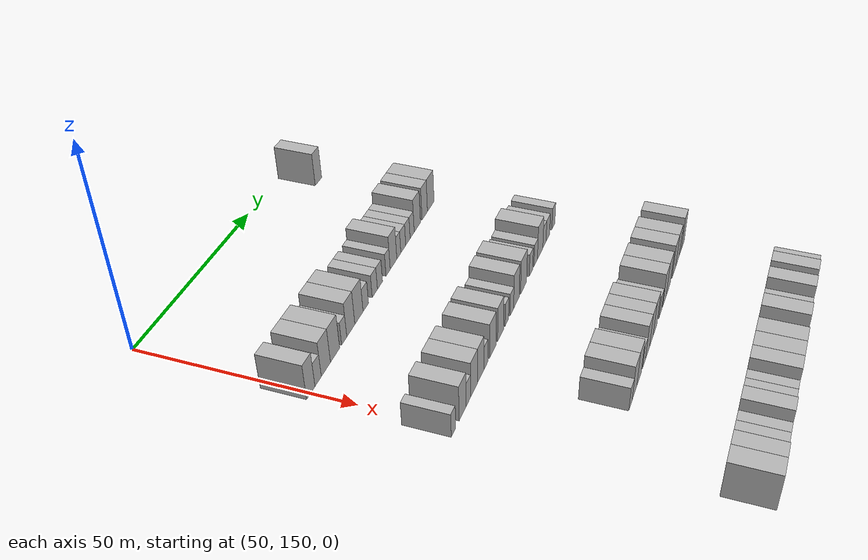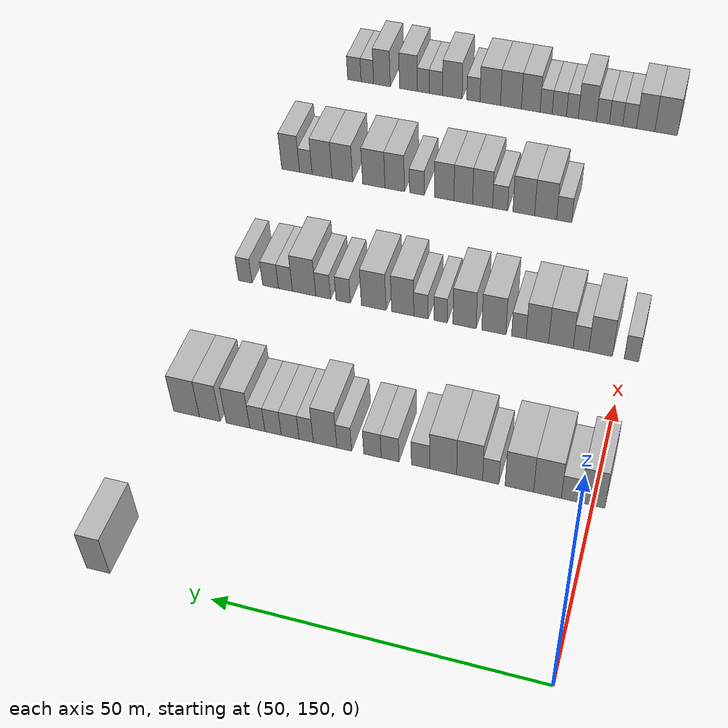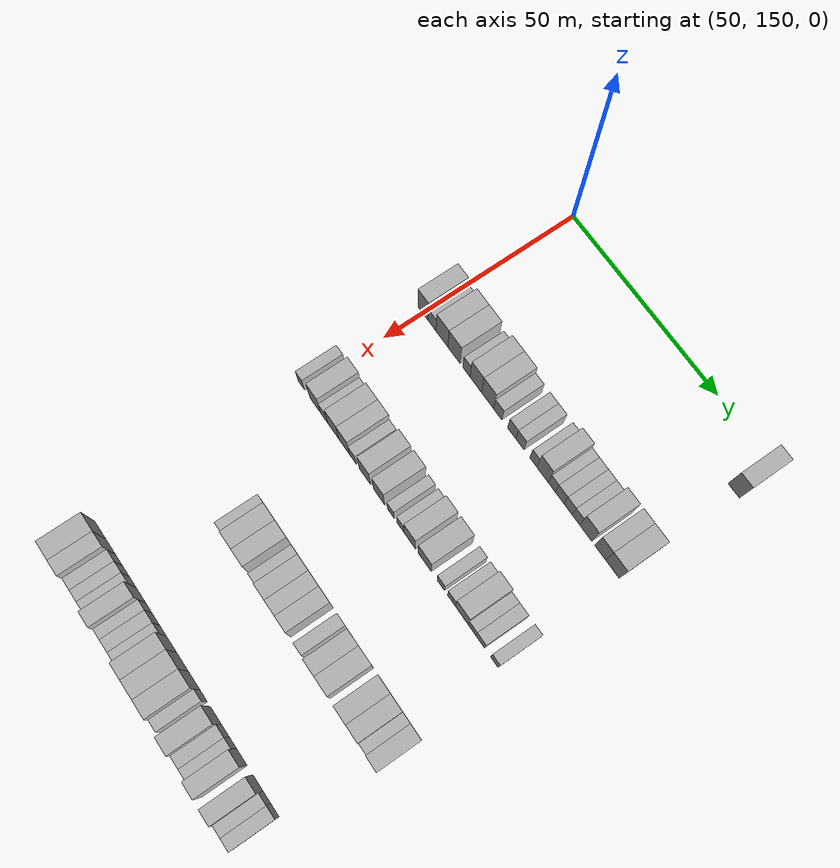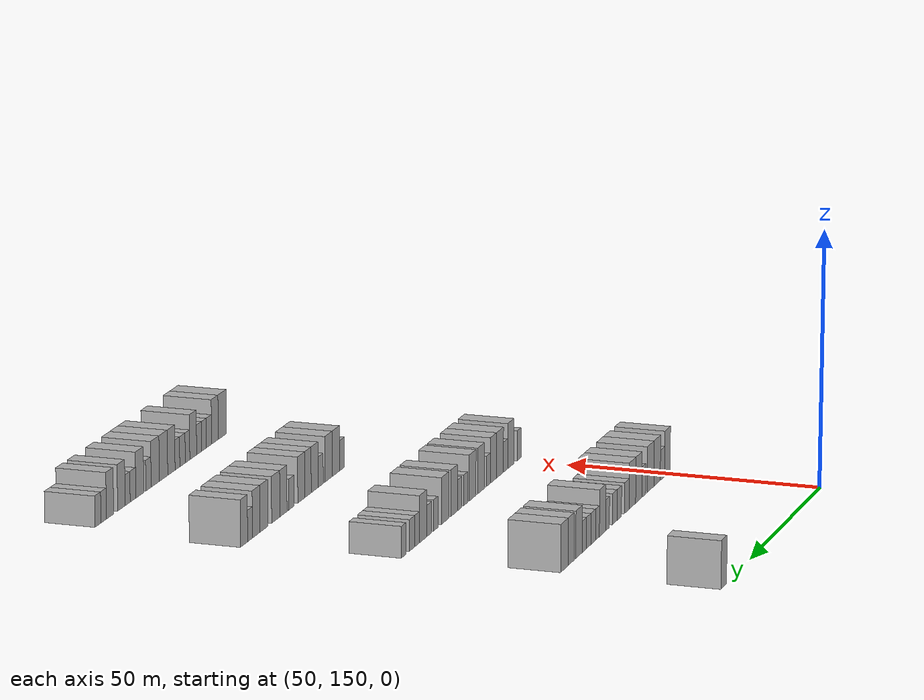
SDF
<sdf version="1.6">
 <world name="default">
  <model name="building_379">
   <static>1</static>
   <pose>55.0000 217.6467 0 0.000000 0.000000 0.000000</pose>
   <link name="link">
    <pose>0 0 4.50 0 0 0</pose>
    <collision name="collision"><geometry><box><size>10.0000 3.7073 9.0000</size></box></geometry></collision>
    <visual name="visual">
     <cast_shadows>0</cast_shadows>
     <geometry><box><size>10.0000 3.7073 9.0000</size></box></geometry>
     <material>
      <script>
       <uri>model://HANNAS_wall/materials/scripts</uri>
       <uri>model://HANNAS_wall/materials/textures</uri>
       <name>vrc/HANNAS_wall</name>
      </script>
     </material>
    </visual>
   </link>
  </model>
  <model name="building_598">
   <static>1</static>
   <pose>85.0000 150.0785 0 0.000000 0.000000 0.000000</pose>
   <link name="link">
    <pose>0 0 4.50 0 0 0</pose>
    <collision name="collision"><geometry><box><size>10.0000 3.7799 9.0000</size></box></geometry></collision>
    <visual name="visual">
     <cast_shadows>0</cast_shadows>
     <geometry><box><size>10.0000 3.7799 9.0000</size></box></geometry>
     <material>
      <script>
       <uri>model://HANNAS_wall/materials/scripts</uri>
       <uri>model://HANNAS_wall/materials/textures</uri>
       <name>vrc/HANNAS_wall</name>
      </script>
     </material>
    </visual>
   </link>
  </model>
  <model name="building_599">
   <static>1</static>
   <pose>85.0000 153.4374 0 0.000000 0.000000 0.000000</pose>
   <link name="link">
    <pose>0 0 3.00 0 0 0</pose>
    <collision name="collision"><geometry><box><size>10.0000 2.9381 6.0000</size></box></geometry></collision>
    <visual name="visual">
     <cast_shadows>0</cast_shadows>
     <geometry><box><size>10.0000 2.9381 6.0000</size></box></geometry>
     <material>
      <script>
       <uri>model://HANNAS_wall/materials/scripts</uri>
       <uri>model://HANNAS_wall/materials/textures</uri>
       <name>vrc/HANNAS_wall</name>
      </script>
     </material>
    </visual>
   </link>
  </model>
  <model name="building_600">
   <static>1</static>
   <pose>85.0000 157.0739 0 0.000000 0.000000 0.000000</pose>
   <link name="link">
    <pose>0 0 4.50 0 0 0</pose>
    <collision name="collision"><geometry><box><size>10.0000 4.3348 9.0000</size></box></geometry></collision>
    <visual name="visual">
     <cast_shadows>0</cast_shadows>
     <geometry><box><size>10.0000 4.3348 9.0000</size></box></geometry>
     <material>
      <script>
       <uri>model://HANNAS_wall/materials/scripts</uri>
       <uri>model://HANNAS_wall/materials/textures</uri>
       <name>vrc/HANNAS_wall</name>
      </script>
     </material>
    </visual>
   </link>
  </model>
  <model name="building_601">
   <static>1</static>
   <pose>85.0000 161.4794 0 0.000000 0.000000 0.000000</pose>
   <link name="link">
    <pose>0 0 4.50 0 0 0</pose>
    <collision name="collision"><geometry><box><size>10.0000 4.4761 9.0000</size></box></geometry></collision>
    <visual name="visual">
     <cast_shadows>0</cast_shadows>
     <geometry><box><size>10.0000 4.4761 9.0000</size></box></geometry>
     <material>
      <script>
       <uri>model://HANNAS_wall/materials/scripts</uri>
       <uri>model://HANNAS_wall/materials/textures</uri>
       <name>vrc/HANNAS_wall</name>
      </script>
     </material>
    </visual>
   </link>
  </model>
  <model name="building_602">
   <static>1</static>
   <pose>85.0000 166.0016 0 0.000000 0.000000 0.000000</pose>
   <link name="link">
    <pose>0 0 3.00 0 0 0</pose>
    <collision name="collision"><geometry><box><size>10.0000 2.5684 6.0000</size></box></geometry></collision>
    <visual name="visual">
     <cast_shadows>0</cast_shadows>
     <geometry><box><size>10.0000 2.5684 6.0000</size></box></geometry>
     <material>
      <script>
       <uri>model://HANNAS_wall/materials/scripts</uri>
       <uri>model://HANNAS_wall/materials/textures</uri>
       <name>vrc/HANNAS_wall</name>
      </script>
     </material>
    </visual>
   </link>
  </model>
  <model name="building_603">
   <static>1</static>
   <pose>85.0000 169.3496 0 0.000000 0.000000 0.000000</pose>
   <link name="link">
    <pose>0 0 4.50 0 0 0</pose>
    <collision name="collision"><geometry><box><size>10.0000 4.1277 9.0000</size></box></geometry></collision>
    <visual name="visual">
     <cast_shadows>0</cast_shadows>
     <geometry><box><size>10.0000 4.1277 9.0000</size></box></geometry>
     <material>
      <script>
       <uri>model://HANNAS_wall/materials/scripts</uri>
       <uri>model://HANNAS_wall/materials/textures</uri>
       <name>vrc/HANNAS_wall</name>
      </script>
     </material>
    </visual>
   </link>
  </model>
  <model name="building_604">
   <static>1</static>
   <pose>85.0000 173.5848 0 0.000000 0.000000 0.000000</pose>
   <link name="link">
    <pose>0 0 4.50 0 0 0</pose>
    <collision name="collision"><geometry><box><size>10.0000 4.3427 9.0000</size></box></geometry></collision>
    <visual name="visual">
     <cast_shadows>0</cast_shadows>
     <geometry><box><size>10.0000 4.3427 9.0000</size></box></geometry>
     <material>
      <script>
       <uri>model://HANNAS_wall/materials/scripts</uri>
       <uri>model://HANNAS_wall/materials/textures</uri>
       <name>vrc/HANNAS_wall</name>
      </script>
     </material>
    </visual>
   </link>
  </model>
  <model name="building_605">
   <static>1</static>
   <pose>85.0000 177.2299 0 0.000000 0.000000 0.000000</pose>
   <link name="link">
    <pose>0 0 3.00 0 0 0</pose>
    <collision name="collision"><geometry><box><size>10.0000 2.9476 6.0000</size></box></geometry></collision>
    <visual name="visual">
     <cast_shadows>0</cast_shadows>
     <geometry><box><size>10.0000 2.9476 6.0000</size></box></geometry>
     <material>
      <script>
       <uri>model://HANNAS_wall/materials/scripts</uri>
       <uri>model://HANNAS_wall/materials/textures</uri>
       <name>vrc/HANNAS_wall</name>
      </script>
     </material>
    </visual>
   </link>
  </model>
  <model name="building_606">
   <static>1</static>
   <pose>85.0000 182.1564 0 0.000000 0.000000 0.000000</pose>
   <link name="link">
    <pose>0 0 3.00 0 0 0</pose>
    <collision name="collision"><geometry><box><size>10.0000 2.9053 6.0000</size></box></geometry></collision>
    <visual name="visual">
     <cast_shadows>0</cast_shadows>
     <geometry><box><size>10.0000 2.9053 6.0000</size></box></geometry>
     <material>
      <script>
       <uri>model://HANNAS_wall/materials/scripts</uri>
       <uri>model://HANNAS_wall/materials/textures</uri>
       <name>vrc/HANNAS_wall</name>
      </script>
     </material>
    </visual>
   </link>
  </model>
  <model name="building_607">
   <static>1</static>
   <pose>85.0000 185.0451 0 0.000000 0.000000 0.000000</pose>
   <link name="link">
    <pose>0 0 3.00 0 0 0</pose>
    <collision name="collision"><geometry><box><size>10.0000 2.8722 6.0000</size></box></geometry></collision>
    <visual name="visual">
     <cast_shadows>0</cast_shadows>
     <geometry><box><size>10.0000 2.8722 6.0000</size></box></geometry>
     <material>
      <script>
       <uri>model://HANNAS_wall/materials/scripts</uri>
       <uri>model://HANNAS_wall/materials/textures</uri>
       <name>vrc/HANNAS_wall</name>
      </script>
     </material>
    </visual>
   </link>
  </model>
  <model name="building_608">
   <static>1</static>
   <pose>85.0000 189.6989 0 0.000000 0.000000 0.000000</pose>
   <link name="link">
    <pose>0 0 3.00 0 0 0</pose>
    <collision name="collision"><geometry><box><size>10.0000 2.4354 6.0000</size></box></geometry></collision>
    <visual name="visual">
     <cast_shadows>0</cast_shadows>
     <geometry><box><size>10.0000 2.4354 6.0000</size></box></geometry>
     <material>
      <script>
       <uri>model://HANNAS_wall/materials/scripts</uri>
       <uri>model://HANNAS_wall/materials/textures</uri>
       <name>vrc/HANNAS_wall</name>
      </script>
     </material>
    </visual>
   </link>
  </model>
  <model name="building_609">
   <static>1</static>
   <pose>85.0000 192.8748 0 0.000000 0.000000 0.000000</pose>
   <link name="link">
    <pose>0 0 4.50 0 0 0</pose>
    <collision name="collision"><geometry><box><size>10.0000 3.9165 9.0000</size></box></geometry></collision>
    <visual name="visual">
     <cast_shadows>0</cast_shadows>
     <geometry><box><size>10.0000 3.9165 9.0000</size></box></geometry>
     <material>
      <script>
       <uri>model://HANNAS_wall/materials/scripts</uri>
       <uri>model://HANNAS_wall/materials/textures</uri>
       <name>vrc/HANNAS_wall</name>
      </script>
     </material>
    </visual>
   </link>
  </model>
  <model name="building_610">
   <static>1</static>
   <pose>85.0000 196.0333 0 0.000000 0.000000 0.000000</pose>
   <link name="link">
    <pose>0 0 3.00 0 0 0</pose>
    <collision name="collision"><geometry><box><size>10.0000 2.4005 6.0000</size></box></geometry></collision>
    <visual name="visual">
     <cast_shadows>0</cast_shadows>
     <geometry><box><size>10.0000 2.4005 6.0000</size></box></geometry>
     <material>
      <script>
       <uri>model://HANNAS_wall/materials/scripts</uri>
       <uri>model://HANNAS_wall/materials/textures</uri>
       <name>vrc/HANNAS_wall</name>
      </script>
     </material>
    </visual>
   </link>
  </model>
  <model name="building_611">
   <static>1</static>
   <pose>85.0000 198.7253 0 0.000000 0.000000 0.000000</pose>
   <link name="link">
    <pose>0 0 3.00 0 0 0</pose>
    <collision name="collision"><geometry><box><size>10.0000 2.9834 6.0000</size></box></geometry></collision>
    <visual name="visual">
     <cast_shadows>0</cast_shadows>
     <geometry><box><size>10.0000 2.9834 6.0000</size></box></geometry>
     <material>
      <script>
       <uri>model://HANNAS_wall/materials/scripts</uri>
       <uri>model://HANNAS_wall/materials/textures</uri>
       <name>vrc/HANNAS_wall</name>
      </script>
     </material>
    </visual>
   </link>
  </model>
  <model name="building_612">
   <static>1</static>
   <pose>85.0000 201.5936 0 0.000000 0.000000 0.000000</pose>
   <link name="link">
    <pose>0 0 3.00 0 0 0</pose>
    <collision name="collision"><geometry><box><size>10.0000 2.7533 6.0000</size></box></geometry></collision>
    <visual name="visual">
     <cast_shadows>0</cast_shadows>
     <geometry><box><size>10.0000 2.7533 6.0000</size></box></geometry>
     <material>
      <script>
       <uri>model://HANNAS_wall/materials/scripts</uri>
       <uri>model://HANNAS_wall/materials/textures</uri>
       <name>vrc/HANNAS_wall</name>
      </script>
     </material>
    </visual>
   </link>
  </model>
  <model name="building_613">
   <static>1</static>
   <pose>85.0000 204.2564 0 0.000000 0.000000 0.000000</pose>
   <link name="link">
    <pose>0 0 3.00 0 0 0</pose>
    <collision name="collision"><geometry><box><size>10.0000 2.5725 6.0000</size></box></geometry></collision>
    <visual name="visual">
     <cast_shadows>0</cast_shadows>
     <geometry><box><size>10.0000 2.5725 6.0000</size></box></geometry>
     <material>
      <script>
       <uri>model://HANNAS_wall/materials/scripts</uri>
       <uri>model://HANNAS_wall/materials/textures</uri>
       <name>vrc/HANNAS_wall</name>
      </script>
     </material>
    </visual>
   </link>
  </model>
  <model name="building_614">
   <static>1</static>
   <pose>85.0000 207.5692 0 0.000000 0.000000 0.000000</pose>
   <link name="link">
    <pose>0 0 4.50 0 0 0</pose>
    <collision name="collision"><geometry><box><size>10.0000 4.0530 9.0000</size></box></geometry></collision>
    <visual name="visual">
     <cast_shadows>0</cast_shadows>
     <geometry><box><size>10.0000 4.0530 9.0000</size></box></geometry>
     <material>
      <script>
       <uri>model://HANNAS_wall/materials/scripts</uri>
       <uri>model://HANNAS_wall/materials/textures</uri>
       <name>vrc/HANNAS_wall</name>
      </script>
     </material>
    </visual>
   </link>
  </model>
  <model name="building_615">
   <static>1</static>
   <pose>85.0000 212.3995 0 0.000000 0.000000 0.000000</pose>
   <link name="link">
    <pose>0 0 4.50 0 0 0</pose>
    <collision name="collision"><geometry><box><size>10.0000 3.6077 9.0000</size></box></geometry></collision>
    <visual name="visual">
     <cast_shadows>0</cast_shadows>
     <geometry><box><size>10.0000 3.6077 9.0000</size></box></geometry>
     <material>
      <script>
       <uri>model://HANNAS_wall/materials/scripts</uri>
       <uri>model://HANNAS_wall/materials/textures</uri>
       <name>vrc/HANNAS_wall</name>
      </script>
     </material>
    </visual>
   </link>
  </model>
  <model name="building_616">
   <static>1</static>
   <pose>85.0000 216.4337 0 0.000000 0.000000 0.000000</pose>
   <link name="link">
    <pose>0 0 4.50 0 0 0</pose>
    <collision name="collision"><geometry><box><size>10.0000 4.4605 9.0000</size></box></geometry></collision>
    <visual name="visual">
     <cast_shadows>0</cast_shadows>
     <geometry><box><size>10.0000 4.4605 9.0000</size></box></geometry>
     <material>
      <script>
       <uri>model://HANNAS_wall/materials/scripts</uri>
       <uri>model://HANNAS_wall/materials/textures</uri>
       <name>vrc/HANNAS_wall</name>
      </script>
     </material>
    </visual>
   </link>
  </model>
  <model name="building_828">
   <static>1</static>
   <pose>115.0000 148.9648 0 0.000000 0.000000 0.000000</pose>
   <link name="link">
    <pose>0 0 3.00 0 0 0</pose>
    <collision name="collision"><geometry><box><size>10.0000 2.4385 6.0000</size></box></geometry></collision>
    <visual name="visual">
     <cast_shadows>0</cast_shadows>
     <geometry><box><size>10.0000 2.4385 6.0000</size></box></geometry>
     <material>
      <script>
       <uri>model://HANNAS_wall/materials/scripts</uri>
       <uri>model://HANNAS_wall/materials/textures</uri>
       <name>vrc/HANNAS_wall</name>
      </script>
     </material>
    </visual>
   </link>
  </model>
  <model name="building_829">
   <static>1</static>
   <pose>115.0000 154.1954 0 0.000000 0.000000 0.000000</pose>
   <link name="link">
    <pose>0 0 4.50 0 0 0</pose>
    <collision name="collision"><geometry><box><size>10.0000 4.0228 9.0000</size></box></geometry></collision>
    <visual name="visual">
     <cast_shadows>0</cast_shadows>
     <geometry><box><size>10.0000 4.0228 9.0000</size></box></geometry>
     <material>
      <script>
       <uri>model://HANNAS_wall/materials/scripts</uri>
       <uri>model://HANNAS_wall/materials/textures</uri>
       <name>vrc/HANNAS_wall</name>
      </script>
     </material>
    </visual>
   </link>
  </model>
  <model name="building_830">
   <static>1</static>
   <pose>115.0000 157.5429 0 0.000000 0.000000 0.000000</pose>
   <link name="link">
    <pose>0 0 3.00 0 0 0</pose>
    <collision name="collision"><geometry><box><size>10.0000 2.6722 6.0000</size></box></geometry></collision>
    <visual name="visual">
     <cast_shadows>0</cast_shadows>
     <geometry><box><size>10.0000 2.6722 6.0000</size></box></geometry>
     <material>
      <script>
       <uri>model://HANNAS_wall/materials/scripts</uri>
       <uri>model://HANNAS_wall/materials/textures</uri>
       <name>vrc/HANNAS_wall</name>
      </script>
     </material>
    </visual>
   </link>
  </model>
  <model name="building_831">
   <static>1</static>
   <pose>115.0000 160.9917 0 0.000000 0.000000 0.000000</pose>
   <link name="link">
    <pose>0 0 4.50 0 0 0</pose>
    <collision name="collision"><geometry><box><size>10.0000 4.2254 9.0000</size></box></geometry></collision>
    <visual name="visual">
     <cast_shadows>0</cast_shadows>
     <geometry><box><size>10.0000 4.2254 9.0000</size></box></geometry>
     <material>
      <script>
       <uri>model://HANNAS_wall/materials/scripts</uri>
       <uri>model://HANNAS_wall/materials/textures</uri>
       <name>vrc/HANNAS_wall</name>
      </script>
     </material>
    </visual>
   </link>
  </model>
  <model name="building_832">
   <static>1</static>
   <pose>115.0000 165.0558 0 0.000000 0.000000 0.000000</pose>
   <link name="link">
    <pose>0 0 4.50 0 0 0</pose>
    <collision name="collision"><geometry><box><size>10.0000 3.9028 9.0000</size></box></geometry></collision>
    <visual name="visual">
     <cast_shadows>0</cast_shadows>
     <geometry><box><size>10.0000 3.9028 9.0000</size></box></geometry>
     <material>
      <script>
       <uri>model://HANNAS_wall/materials/scripts</uri>
       <uri>model://HANNAS_wall/materials/textures</uri>
       <name>vrc/HANNAS_wall</name>
      </script>
     </material>
    </visual>
   </link>
  </model>
  <model name="building_833">
   <static>1</static>
   <pose>115.0000 168.2707 0 0.000000 0.000000 0.000000</pose>
   <link name="link">
    <pose>0 0 3.00 0 0 0</pose>
    <collision name="collision"><geometry><box><size>10.0000 2.5271 6.0000</size></box></geometry></collision>
    <visual name="visual">
     <cast_shadows>0</cast_shadows>
     <geometry><box><size>10.0000 2.5271 6.0000</size></box></geometry>
     <material>
      <script>
       <uri>model://HANNAS_wall/materials/scripts</uri>
       <uri>model://HANNAS_wall/materials/textures</uri>
       <name>vrc/HANNAS_wall</name>
      </script>
     </material>
    </visual>
   </link>
  </model>
  <model name="building_834">
   <static>1</static>
   <pose>115.0000 172.6425 0 0.000000 0.000000 0.000000</pose>
   <link name="link">
    <pose>0 0 4.50 0 0 0</pose>
    <collision name="collision"><geometry><box><size>10.0000 4.2163 9.0000</size></box></geometry></collision>
    <visual name="visual">
     <cast_shadows>0</cast_shadows>
     <geometry><box><size>10.0000 4.2163 9.0000</size></box></geometry>
     <material>
      <script>
       <uri>model://HANNAS_wall/materials/scripts</uri>
       <uri>model://HANNAS_wall/materials/textures</uri>
       <name>vrc/HANNAS_wall</name>
      </script>
     </material>
    </visual>
   </link>
  </model>
  <model name="building_835">
   <static>1</static>
   <pose>115.0000 177.8009 0 0.000000 0.000000 0.000000</pose>
   <link name="link">
    <pose>0 0 4.50 0 0 0</pose>
    <collision name="collision"><geometry><box><size>10.0000 4.1006 9.0000</size></box></geometry></collision>
    <visual name="visual">
     <cast_shadows>0</cast_shadows>
     <geometry><box><size>10.0000 4.1006 9.0000</size></box></geometry>
     <material>
      <script>
       <uri>model://HANNAS_wall/materials/scripts</uri>
       <uri>model://HANNAS_wall/materials/textures</uri>
       <name>vrc/HANNAS_wall</name>
      </script>
     </material>
    </visual>
   </link>
  </model>
  <model name="building_836">
   <static>1</static>
   <pose>115.0000 182.0591 0 0.000000 0.000000 0.000000</pose>
   <link name="link">
    <pose>0 0 3.00 0 0 0</pose>
    <collision name="collision"><geometry><box><size>10.0000 2.4159 6.0000</size></box></geometry></collision>
    <visual name="visual">
     <cast_shadows>0</cast_shadows>
     <geometry><box><size>10.0000 2.4159 6.0000</size></box></geometry>
     <material>
      <script>
       <uri>model://HANNAS_wall/materials/scripts</uri>
       <uri>model://HANNAS_wall/materials/textures</uri>
       <name>vrc/HANNAS_wall</name>
      </script>
     </material>
    </visual>
   </link>
  </model>
  <model name="building_837">
   <static>1</static>
   <pose>115.0000 185.5472 0 0.000000 0.000000 0.000000</pose>
   <link name="link">
    <pose>0 0 3.00 0 0 0</pose>
    <collision name="collision"><geometry><box><size>10.0000 2.5602 6.0000</size></box></geometry></collision>
    <visual name="visual">
     <cast_shadows>0</cast_shadows>
     <geometry><box><size>10.0000 2.5602 6.0000</size></box></geometry>
     <material>
      <script>
       <uri>model://HANNAS_wall/materials/scripts</uri>
       <uri>model://HANNAS_wall/materials/textures</uri>
       <name>vrc/HANNAS_wall</name>
      </script>
     </material>
    </visual>
   </link>
  </model>
  <model name="building_838">
   <static>1</static>
   <pose>115.0000 188.8322 0 0.000000 0.000000 0.000000</pose>
   <link name="link">
    <pose>0 0 4.50 0 0 0</pose>
    <collision name="collision"><geometry><box><size>10.0000 4.0099 9.0000</size></box></geometry></collision>
    <visual name="visual">
     <cast_shadows>0</cast_shadows>
     <geometry><box><size>10.0000 4.0099 9.0000</size></box></geometry>
     <material>
      <script>
       <uri>model://HANNAS_wall/materials/scripts</uri>
       <uri>model://HANNAS_wall/materials/textures</uri>
       <name>vrc/HANNAS_wall</name>
      </script>
     </material>
    </visual>
   </link>
  </model>
  <model name="building_839">
   <static>1</static>
   <pose>115.0000 194.0826 0 0.000000 0.000000 0.000000</pose>
   <link name="link">
    <pose>0 0 4.50 0 0 0</pose>
    <collision name="collision"><geometry><box><size>10.0000 4.4908 9.0000</size></box></geometry></collision>
    <visual name="visual">
     <cast_shadows>0</cast_shadows>
     <geometry><box><size>10.0000 4.4908 9.0000</size></box></geometry>
     <material>
      <script>
       <uri>model://HANNAS_wall/materials/scripts</uri>
       <uri>model://HANNAS_wall/materials/textures</uri>
       <name>vrc/HANNAS_wall</name>
      </script>
     </material>
    </visual>
   </link>
  </model>
  <model name="building_840">
   <static>1</static>
   <pose>115.0000 199.6449 0 0.000000 0.000000 0.000000</pose>
   <link name="link">
    <pose>0 0 3.00 0 0 0</pose>
    <collision name="collision"><geometry><box><size>10.0000 2.6338 6.0000</size></box></geometry></collision>
    <visual name="visual">
     <cast_shadows>0</cast_shadows>
     <geometry><box><size>10.0000 2.6338 6.0000</size></box></geometry>
     <material>
      <script>
       <uri>model://HANNAS_wall/materials/scripts</uri>
       <uri>model://HANNAS_wall/materials/textures</uri>
       <name>vrc/HANNAS_wall</name>
      </script>
     </material>
    </visual>
   </link>
  </model>
  <model name="building_841">
   <static>1</static>
   <pose>115.0000 203.3313 0 0.000000 0.000000 0.000000</pose>
   <link name="link">
    <pose>0 0 3.00 0 0 0</pose>
    <collision name="collision"><geometry><box><size>10.0000 2.7391 6.0000</size></box></geometry></collision>
    <visual name="visual">
     <cast_shadows>0</cast_shadows>
     <geometry><box><size>10.0000 2.7391 6.0000</size></box></geometry>
     <material>
      <script>
       <uri>model://HANNAS_wall/materials/scripts</uri>
       <uri>model://HANNAS_wall/materials/textures</uri>
       <name>vrc/HANNAS_wall</name>
      </script>
     </material>
    </visual>
   </link>
  </model>
  <model name="building_842">
   <static>1</static>
   <pose>115.0000 206.8647 0 0.000000 0.000000 0.000000</pose>
   <link name="link">
    <pose>0 0 4.50 0 0 0</pose>
    <collision name="collision"><geometry><box><size>10.0000 4.3277 9.0000</size></box></geometry></collision>
    <visual name="visual">
     <cast_shadows>0</cast_shadows>
     <geometry><box><size>10.0000 4.3277 9.0000</size></box></geometry>
     <material>
      <script>
       <uri>model://HANNAS_wall/materials/scripts</uri>
       <uri>model://HANNAS_wall/materials/textures</uri>
       <name>vrc/HANNAS_wall</name>
      </script>
     </material>
    </visual>
   </link>
  </model>
  <model name="building_843">
   <static>1</static>
   <pose>115.0000 210.3379 0 0.000000 0.000000 0.000000</pose>
   <link name="link">
    <pose>0 0 3.00 0 0 0</pose>
    <collision name="collision"><geometry><box><size>10.0000 2.6187 6.0000</size></box></geometry></collision>
    <visual name="visual">
     <cast_shadows>0</cast_shadows>
     <geometry><box><size>10.0000 2.6187 6.0000</size></box></geometry>
     <material>
      <script>
       <uri>model://HANNAS_wall/materials/scripts</uri>
       <uri>model://HANNAS_wall/materials/textures</uri>
       <name>vrc/HANNAS_wall</name>
      </script>
     </material>
    </visual>
   </link>
  </model>
  <model name="building_844">
   <static>1</static>
   <pose>115.0000 213.1191 0 0.000000 0.000000 0.000000</pose>
   <link name="link">
    <pose>0 0 3.00 0 0 0</pose>
    <collision name="collision"><geometry><box><size>10.0000 2.9436 6.0000</size></box></geometry></collision>
    <visual name="visual">
     <cast_shadows>0</cast_shadows>
     <geometry><box><size>10.0000 2.9436 6.0000</size></box></geometry>
     <material>
      <script>
       <uri>model://HANNAS_wall/materials/scripts</uri>
       <uri>model://HANNAS_wall/materials/textures</uri>
       <name>vrc/HANNAS_wall</name>
      </script>
     </material>
    </visual>
   </link>
  </model>
  <model name="building_845">
   <static>1</static>
   <pose>115.0000 217.8775 0 0.000000 0.000000 0.000000</pose>
   <link name="link">
    <pose>0 0 3.00 0 0 0</pose>
    <collision name="collision"><geometry><box><size>10.0000 2.5733 6.0000</size></box></geometry></collision>
    <visual name="visual">
     <cast_shadows>0</cast_shadows>
     <geometry><box><size>10.0000 2.5733 6.0000</size></box></geometry>
     <material>
      <script>
       <uri>model://HANNAS_wall/materials/scripts</uri>
       <uri>model://HANNAS_wall/materials/textures</uri>
       <name>vrc/HANNAS_wall</name>
      </script>
     </material>
    </visual>
   </link>
  </model>
  <model name="building_1065">
   <static>1</static>
   <pose>145.0000 166.3874 0 0.000000 0.000000 0.000000</pose>
   <link name="link">
    <pose>0 0 3.00 0 0 0</pose>
    <collision name="collision"><geometry><box><size>10.0000 2.8428 6.0000</size></box></geometry></collision>
    <visual name="visual">
     <cast_shadows>0</cast_shadows>
     <geometry><box><size>10.0000 2.8428 6.0000</size></box></geometry>
     <material>
      <script>
       <uri>model://HANNAS_wall/materials/scripts</uri>
       <uri>model://HANNAS_wall/materials/textures</uri>
       <name>vrc/HANNAS_wall</name>
      </script>
     </material>
    </visual>
   </link>
  </model>
  <model name="building_1066">
   <static>1</static>
   <pose>145.0000 169.8987 0 0.000000 0.000000 0.000000</pose>
   <link name="link">
    <pose>0 0 4.50 0 0 0</pose>
    <collision name="collision"><geometry><box><size>10.0000 4.1797 9.0000</size></box></geometry></collision>
    <visual name="visual">
     <cast_shadows>0</cast_shadows>
     <geometry><box><size>10.0000 4.1797 9.0000</size></box></geometry>
     <material>
      <script>
       <uri>model://HANNAS_wall/materials/scripts</uri>
       <uri>model://HANNAS_wall/materials/textures</uri>
       <name>vrc/HANNAS_wall</name>
      </script>
     </material>
    </visual>
   </link>
  </model>
  <model name="building_1067">
   <static>1</static>
   <pose>145.0000 174.0564 0 0.000000 0.000000 0.000000</pose>
   <link name="link">
    <pose>0 0 4.50 0 0 0</pose>
    <collision name="collision"><geometry><box><size>10.0000 4.1358 9.0000</size></box></geometry></collision>
    <visual name="visual">
     <cast_shadows>0</cast_shadows>
     <geometry><box><size>10.0000 4.1358 9.0000</size></box></geometry>
     <material>
      <script>
       <uri>model://HANNAS_wall/materials/scripts</uri>
       <uri>model://HANNAS_wall/materials/textures</uri>
       <name>vrc/HANNAS_wall</name>
      </script>
     </material>
    </visual>
   </link>
  </model>
  <model name="building_1068">
   <static>1</static>
   <pose>145.0000 178.5800 0 0.000000 0.000000 0.000000</pose>
   <link name="link">
    <pose>0 0 3.00 0 0 0</pose>
    <collision name="collision"><geometry><box><size>10.0000 2.9113 6.0000</size></box></geometry></collision>
    <visual name="visual">
     <cast_shadows>0</cast_shadows>
     <geometry><box><size>10.0000 2.9113 6.0000</size></box></geometry>
     <material>
      <script>
       <uri>model://HANNAS_wall/materials/scripts</uri>
       <uri>model://HANNAS_wall/materials/textures</uri>
       <name>vrc/HANNAS_wall</name>
      </script>
     </material>
    </visual>
   </link>
  </model>
  <model name="building_1069">
   <static>1</static>
   <pose>145.0000 181.9578 0 0.000000 0.000000 0.000000</pose>
   <link name="link">
    <pose>0 0 4.50 0 0 0</pose>
    <collision name="collision"><geometry><box><size>10.0000 3.8443 9.0000</size></box></geometry></collision>
    <visual name="visual">
     <cast_shadows>0</cast_shadows>
     <geometry><box><size>10.0000 3.8443 9.0000</size></box></geometry>
     <material>
      <script>
       <uri>model://HANNAS_wall/materials/scripts</uri>
       <uri>model://HANNAS_wall/materials/textures</uri>
       <name>vrc/HANNAS_wall</name>
      </script>
     </material>
    </visual>
   </link>
  </model>
  <model name="building_1070">
   <static>1</static>
   <pose>145.0000 185.6859 0 0.000000 0.000000 0.000000</pose>
   <link name="link">
    <pose>0 0 4.50 0 0 0</pose>
    <collision name="collision"><geometry><box><size>10.0000 3.6119 9.0000</size></box></geometry></collision>
    <visual name="visual">
     <cast_shadows>0</cast_shadows>
     <geometry><box><size>10.0000 3.6119 9.0000</size></box></geometry>
     <material>
      <script>
       <uri>model://HANNAS_wall/materials/scripts</uri>
       <uri>model://HANNAS_wall/materials/textures</uri>
       <name>vrc/HANNAS_wall</name>
      </script>
     </material>
    </visual>
   </link>
  </model>
  <model name="building_1071">
   <static>1</static>
   <pose>145.0000 189.4040 0 0.000000 0.000000 0.000000</pose>
   <link name="link">
    <pose>0 0 4.50 0 0 0</pose>
    <collision name="collision"><geometry><box><size>10.0000 3.8243 9.0000</size></box></geometry></collision>
    <visual name="visual">
     <cast_shadows>0</cast_shadows>
     <geometry><box><size>10.0000 3.8243 9.0000</size></box></geometry>
     <material>
      <script>
       <uri>model://HANNAS_wall/materials/scripts</uri>
       <uri>model://HANNAS_wall/materials/textures</uri>
       <name>vrc/HANNAS_wall</name>
      </script>
     </material>
    </visual>
   </link>
  </model>
  <model name="building_1072">
   <static>1</static>
   <pose>145.0000 194.7619 0 0.000000 0.000000 0.000000</pose>
   <link name="link">
    <pose>0 0 3.00 0 0 0</pose>
    <collision name="collision"><geometry><box><size>10.0000 2.8916 6.0000</size></box></geometry></collision>
    <visual name="visual">
     <cast_shadows>0</cast_shadows>
     <geometry><box><size>10.0000 2.8916 6.0000</size></box></geometry>
     <material>
      <script>
       <uri>model://HANNAS_wall/materials/scripts</uri>
       <uri>model://HANNAS_wall/materials/textures</uri>
       <name>vrc/HANNAS_wall</name>
      </script>
     </material>
    </visual>
   </link>
  </model>
  <model name="building_1073">
   <static>1</static>
   <pose>145.0000 199.1402 0 0.000000 0.000000 0.000000</pose>
   <link name="link">
    <pose>0 0 4.50 0 0 0</pose>
    <collision name="collision"><geometry><box><size>10.0000 3.8649 9.0000</size></box></geometry></collision>
    <visual name="visual">
     <cast_shadows>0</cast_shadows>
     <geometry><box><size>10.0000 3.8649 9.0000</size></box></geometry>
     <material>
      <script>
       <uri>model://HANNAS_wall/materials/scripts</uri>
       <uri>model://HANNAS_wall/materials/textures</uri>
       <name>vrc/HANNAS_wall</name>
      </script>
     </material>
    </visual>
   </link>
  </model>
  <model name="building_1074">
   <static>1</static>
   <pose>145.0000 203.2969 0 0.000000 0.000000 0.000000</pose>
   <link name="link">
    <pose>0 0 4.50 0 0 0</pose>
    <collision name="collision"><geometry><box><size>10.0000 4.4487 9.0000</size></box></geometry></collision>
    <visual name="visual">
     <cast_shadows>0</cast_shadows>
     <geometry><box><size>10.0000 4.4487 9.0000</size></box></geometry>
     <material>
      <script>
       <uri>model://HANNAS_wall/materials/scripts</uri>
       <uri>model://HANNAS_wall/materials/textures</uri>
       <name>vrc/HANNAS_wall</name>
      </script>
     </material>
    </visual>
   </link>
  </model>
  <model name="building_1075">
   <static>1</static>
   <pose>145.0000 209.6086 0 0.000000 0.000000 0.000000</pose>
   <link name="link">
    <pose>0 0 4.50 0 0 0</pose>
    <collision name="collision"><geometry><box><size>10.0000 4.1746 9.0000</size></box></geometry></collision>
    <visual name="visual">
     <cast_shadows>0</cast_shadows>
     <geometry><box><size>10.0000 4.1746 9.0000</size></box></geometry>
     <material>
      <script>
       <uri>model://HANNAS_wall/materials/scripts</uri>
       <uri>model://HANNAS_wall/materials/textures</uri>
       <name>vrc/HANNAS_wall</name>
      </script>
     </material>
    </visual>
   </link>
  </model>
  <model name="building_1076">
   <static>1</static>
   <pose>145.0000 213.7085 0 0.000000 0.000000 0.000000</pose>
   <link name="link">
    <pose>0 0 4.50 0 0 0</pose>
    <collision name="collision"><geometry><box><size>10.0000 4.0252 9.0000</size></box></geometry></collision>
    <visual name="visual">
     <cast_shadows>0</cast_shadows>
     <geometry><box><size>10.0000 4.0252 9.0000</size></box></geometry>
     <material>
      <script>
       <uri>model://HANNAS_wall/materials/scripts</uri>
       <uri>model://HANNAS_wall/materials/textures</uri>
       <name>vrc/HANNAS_wall</name>
      </script>
     </material>
    </visual>
   </link>
  </model>
  <model name="building_1077">
   <static>1</static>
   <pose>145.0000 216.9926 0 0.000000 0.000000 0.000000</pose>
   <link name="link">
    <pose>0 0 3.00 0 0 0</pose>
    <collision name="collision"><geometry><box><size>10.0000 2.5429 6.0000</size></box></geometry></collision>
    <visual name="visual">
     <cast_shadows>0</cast_shadows>
     <geometry><box><size>10.0000 2.5429 6.0000</size></box></geometry>
     <material>
      <script>
       <uri>model://HANNAS_wall/materials/scripts</uri>
       <uri>model://HANNAS_wall/materials/textures</uri>
       <name>vrc/HANNAS_wall</name>
      </script>
     </material>
    </visual>
   </link>
  </model>
  <model name="building_1078">
   <static>1</static>
   <pose>145.0000 220.0880 0 0.000000 0.000000 0.000000</pose>
   <link name="link">
    <pose>0 0 4.50 0 0 0</pose>
    <collision name="collision"><geometry><box><size>10.0000 3.6480 9.0000</size></box></geometry></collision>
    <visual name="visual">
     <cast_shadows>0</cast_shadows>
     <geometry><box><size>10.0000 3.6480 9.0000</size></box></geometry>
     <material>
      <script>
       <uri>model://HANNAS_wall/materials/scripts</uri>
       <uri>model://HANNAS_wall/materials/textures</uri>
       <name>vrc/HANNAS_wall</name>
      </script>
     </material>
    </visual>
   </link>
  </model>
  <model name="building_1289">
   <static>1</static>
   <pose>175.0000 151.6793 0 0.000000 0.000000 0.000000</pose>
   <link name="link">
    <pose>0 0 4.50 0 0 0</pose>
    <collision name="collision"><geometry><box><size>10.0000 4.4831 9.0000</size></box></geometry></collision>
    <visual name="visual">
     <cast_shadows>0</cast_shadows>
     <geometry><box><size>10.0000 4.4831 9.0000</size></box></geometry>
     <material>
      <script>
       <uri>model://HANNAS_wall/materials/scripts</uri>
       <uri>model://HANNAS_wall/materials/textures</uri>
       <name>vrc/HANNAS_wall</name>
      </script>
     </material>
    </visual>
   </link>
  </model>
  <model name="building_1290">
   <static>1</static>
   <pose>175.0000 155.7691 0 0.000000 0.000000 0.000000</pose>
   <link name="link">
    <pose>0 0 4.50 0 0 0</pose>
    <collision name="collision"><geometry><box><size>10.0000 3.6965 9.0000</size></box></geometry></collision>
    <visual name="visual">
     <cast_shadows>0</cast_shadows>
     <geometry><box><size>10.0000 3.6965 9.0000</size></box></geometry>
     <material>
      <script>
       <uri>model://HANNAS_wall/materials/scripts</uri>
       <uri>model://HANNAS_wall/materials/textures</uri>
       <name>vrc/HANNAS_wall</name>
      </script>
     </material>
    </visual>
   </link>
  </model>
  <model name="building_1291">
   <static>1</static>
   <pose>175.0000 159.0152 0 0.000000 0.000000 0.000000</pose>
   <link name="link">
    <pose>0 0 3.00 0 0 0</pose>
    <collision name="collision"><geometry><box><size>10.0000 2.7956 6.0000</size></box></geometry></collision>
    <visual name="visual">
     <cast_shadows>0</cast_shadows>
     <geometry><box><size>10.0000 2.7956 6.0000</size></box></geometry>
     <material>
      <script>
       <uri>model://HANNAS_wall/materials/scripts</uri>
       <uri>model://HANNAS_wall/materials/textures</uri>
       <name>vrc/HANNAS_wall</name>
      </script>
     </material>
    </visual>
   </link>
  </model>
  <model name="building_1292">
   <static>1</static>
   <pose>175.0000 161.7531 0 0.000000 0.000000 0.000000</pose>
   <link name="link">
    <pose>0 0 3.00 0 0 0</pose>
    <collision name="collision"><geometry><box><size>10.0000 2.6802 6.0000</size></box></geometry></collision>
    <visual name="visual">
     <cast_shadows>0</cast_shadows>
     <geometry><box><size>10.0000 2.6802 6.0000</size></box></geometry>
     <material>
      <script>
       <uri>model://HANNAS_wall/materials/scripts</uri>
       <uri>model://HANNAS_wall/materials/textures</uri>
       <name>vrc/HANNAS_wall</name>
      </script>
     </material>
    </visual>
   </link>
  </model>
  <model name="building_1293">
   <static>1</static>
   <pose>175.0000 164.4236 0 0.000000 0.000000 0.000000</pose>
   <link name="link">
    <pose>0 0 3.00 0 0 0</pose>
    <collision name="collision"><geometry><box><size>10.0000 2.6607 6.0000</size></box></geometry></collision>
    <visual name="visual">
     <cast_shadows>0</cast_shadows>
     <geometry><box><size>10.0000 2.6607 6.0000</size></box></geometry>
     <material>
      <script>
       <uri>model://HANNAS_wall/materials/scripts</uri>
       <uri>model://HANNAS_wall/materials/textures</uri>
       <name>vrc/HANNAS_wall</name>
      </script>
     </material>
    </visual>
   </link>
  </model>
  <model name="building_1294">
   <static>1</static>
   <pose>175.0000 167.5961 0 0.000000 0.000000 0.000000</pose>
   <link name="link">
    <pose>0 0 4.50 0 0 0</pose>
    <collision name="collision"><geometry><box><size>10.0000 3.6844 9.0000</size></box></geometry></collision>
    <visual name="visual">
     <cast_shadows>0</cast_shadows>
     <geometry><box><size>10.0000 3.6844 9.0000</size></box></geometry>
     <material>
      <script>
       <uri>model://HANNAS_wall/materials/scripts</uri>
       <uri>model://HANNAS_wall/materials/textures</uri>
       <name>vrc/HANNAS_wall</name>
      </script>
     </material>
    </visual>
   </link>
  </model>
  <model name="building_1295">
   <static>1</static>
   <pose>175.0000 170.6561 0 0.000000 0.000000 0.000000</pose>
   <link name="link">
    <pose>0 0 3.00 0 0 0</pose>
    <collision name="collision"><geometry><box><size>10.0000 2.4354 6.0000</size></box></geometry></collision>
    <visual name="visual">
     <cast_shadows>0</cast_shadows>
     <geometry><box><size>10.0000 2.4354 6.0000</size></box></geometry>
     <material>
      <script>
       <uri>model://HANNAS_wall/materials/scripts</uri>
       <uri>model://HANNAS_wall/materials/textures</uri>
       <name>vrc/HANNAS_wall</name>
      </script>
     </material>
    </visual>
   </link>
  </model>
  <model name="building_1296">
   <static>1</static>
   <pose>175.0000 173.3408 0 0.000000 0.000000 0.000000</pose>
   <link name="link">
    <pose>0 0 3.00 0 0 0</pose>
    <collision name="collision"><geometry><box><size>10.0000 2.9340 6.0000</size></box></geometry></collision>
    <visual name="visual">
     <cast_shadows>0</cast_shadows>
     <geometry><box><size>10.0000 2.9340 6.0000</size></box></geometry>
     <material>
      <script>
       <uri>model://HANNAS_wall/materials/scripts</uri>
       <uri>model://HANNAS_wall/materials/textures</uri>
       <name>vrc/HANNAS_wall</name>
      </script>
     </material>
    </visual>
   </link>
  </model>
  <model name="building_1297">
   <static>1</static>
   <pose>175.0000 176.0591 0 0.000000 0.000000 0.000000</pose>
   <link name="link">
    <pose>0 0 3.00 0 0 0</pose>
    <collision name="collision"><geometry><box><size>10.0000 2.5025 6.0000</size></box></geometry></collision>
    <visual name="visual">
     <cast_shadows>0</cast_shadows>
     <geometry><box><size>10.0000 2.5025 6.0000</size></box></geometry>
     <material>
      <script>
       <uri>model://HANNAS_wall/materials/scripts</uri>
       <uri>model://HANNAS_wall/materials/textures</uri>
       <name>vrc/HANNAS_wall</name>
      </script>
     </material>
    </visual>
   </link>
  </model>
  <model name="building_1298">
   <static>1</static>
   <pose>175.0000 179.2460 0 0.000000 0.000000 0.000000</pose>
   <link name="link">
    <pose>0 0 4.50 0 0 0</pose>
    <collision name="collision"><geometry><box><size>10.0000 3.8714 9.0000</size></box></geometry></collision>
    <visual name="visual">
     <cast_shadows>0</cast_shadows>
     <geometry><box><size>10.0000 3.8714 9.0000</size></box></geometry>
     <material>
      <script>
       <uri>model://HANNAS_wall/materials/scripts</uri>
       <uri>model://HANNAS_wall/materials/textures</uri>
       <name>vrc/HANNAS_wall</name>
      </script>
     </material>
    </visual>
   </link>
  </model>
  <model name="building_1299">
   <static>1</static>
   <pose>175.0000 183.3627 0 0.000000 0.000000 0.000000</pose>
   <link name="link">
    <pose>0 0 4.50 0 0 0</pose>
    <collision name="collision"><geometry><box><size>10.0000 4.3620 9.0000</size></box></geometry></collision>
    <visual name="visual">
     <cast_shadows>0</cast_shadows>
     <geometry><box><size>10.0000 4.3620 9.0000</size></box></geometry>
     <material>
      <script>
       <uri>model://HANNAS_wall/materials/scripts</uri>
       <uri>model://HANNAS_wall/materials/textures</uri>
       <name>vrc/HANNAS_wall</name>
      </script>
     </material>
    </visual>
   </link>
  </model>
  <model name="building_1300">
   <static>1</static>
   <pose>175.0000 187.6928 0 0.000000 0.000000 0.000000</pose>
   <link name="link">
    <pose>0 0 4.50 0 0 0</pose>
    <collision name="collision"><geometry><box><size>10.0000 4.2981 9.0000</size></box></geometry></collision>
    <visual name="visual">
     <cast_shadows>0</cast_shadows>
     <geometry><box><size>10.0000 4.2981 9.0000</size></box></geometry>
     <material>
      <script>
       <uri>model://HANNAS_wall/materials/scripts</uri>
       <uri>model://HANNAS_wall/materials/textures</uri>
       <name>vrc/HANNAS_wall</name>
      </script>
     </material>
    </visual>
   </link>
  </model>
  <model name="building_1301">
   <static>1</static>
   <pose>175.0000 191.2243 0 0.000000 0.000000 0.000000</pose>
   <link name="link">
    <pose>0 0 3.00 0 0 0</pose>
    <collision name="collision"><geometry><box><size>10.0000 2.7651 6.0000</size></box></geometry></collision>
    <visual name="visual">
     <cast_shadows>0</cast_shadows>
     <geometry><box><size>10.0000 2.7651 6.0000</size></box></geometry>
     <material>
      <script>
       <uri>model://HANNAS_wall/materials/scripts</uri>
       <uri>model://HANNAS_wall/materials/textures</uri>
       <name>vrc/HANNAS_wall</name>
      </script>
     </material>
    </visual>
   </link>
  </model>
  <model name="building_1302">
   <static>1</static>
   <pose>175.0000 195.6692 0 0.000000 0.000000 0.000000</pose>
   <link name="link">
    <pose>0 0 4.50 0 0 0</pose>
    <collision name="collision"><geometry><box><size>10.0000 4.1247 9.0000</size></box></geometry></collision>
    <visual name="visual">
     <cast_shadows>0</cast_shadows>
     <geometry><box><size>10.0000 4.1247 9.0000</size></box></geometry>
     <material>
      <script>
       <uri>model://HANNAS_wall/materials/scripts</uri>
       <uri>model://HANNAS_wall/materials/textures</uri>
       <name>vrc/HANNAS_wall</name>
      </script>
     </material>
    </visual>
   </link>
  </model>
  <model name="building_1303">
   <static>1</static>
   <pose>175.0000 199.1825 0 0.000000 0.000000 0.000000</pose>
   <link name="link">
    <pose>0 0 3.00 0 0 0</pose>
    <collision name="collision"><geometry><box><size>10.0000 2.9018 6.0000</size></box></geometry></collision>
    <visual name="visual">
     <cast_shadows>0</cast_shadows>
     <geometry><box><size>10.0000 2.9018 6.0000</size></box></geometry>
     <material>
      <script>
       <uri>model://HANNAS_wall/materials/scripts</uri>
       <uri>model://HANNAS_wall/materials/textures</uri>
       <name>vrc/HANNAS_wall</name>
      </script>
     </material>
    </visual>
   </link>
  </model>
  <model name="building_1304">
   <static>1</static>
   <pose>175.0000 201.8849 0 0.000000 0.000000 0.000000</pose>
   <link name="link">
    <pose>0 0 3.00 0 0 0</pose>
    <collision name="collision"><geometry><box><size>10.0000 2.5031 6.0000</size></box></geometry></collision>
    <visual name="visual">
     <cast_shadows>0</cast_shadows>
     <geometry><box><size>10.0000 2.5031 6.0000</size></box></geometry>
     <material>
      <script>
       <uri>model://HANNAS_wall/materials/scripts</uri>
       <uri>model://HANNAS_wall/materials/textures</uri>
       <name>vrc/HANNAS_wall</name>
      </script>
     </material>
    </visual>
   </link>
  </model>
  <model name="building_1305">
   <static>1</static>
   <pose>175.0000 205.0496 0 0.000000 0.000000 0.000000</pose>
   <link name="link">
    <pose>0 0 4.50 0 0 0</pose>
    <collision name="collision"><geometry><box><size>10.0000 3.8264 9.0000</size></box></geometry></collision>
    <visual name="visual">
     <cast_shadows>0</cast_shadows>
     <geometry><box><size>10.0000 3.8264 9.0000</size></box></geometry>
     <material>
      <script>
       <uri>model://HANNAS_wall/materials/scripts</uri>
       <uri>model://HANNAS_wall/materials/textures</uri>
       <name>vrc/HANNAS_wall</name>
      </script>
     </material>
    </visual>
   </link>
  </model>
  <model name="building_1306">
   <static>1</static>
   <pose>175.0000 210.7687 0 0.000000 0.000000 0.000000</pose>
   <link name="link">
    <pose>0 0 4.50 0 0 0</pose>
    <collision name="collision"><geometry><box><size>10.0000 3.6118 9.0000</size></box></geometry></collision>
    <visual name="visual">
     <cast_shadows>0</cast_shadows>
     <geometry><box><size>10.0000 3.6118 9.0000</size></box></geometry>
     <material>
      <script>
       <uri>model://HANNAS_wall/materials/scripts</uri>
       <uri>model://HANNAS_wall/materials/textures</uri>
       <name>vrc/HANNAS_wall</name>
      </script>
     </material>
    </visual>
   </link>
  </model>
  <model name="building_1307">
   <static>1</static>
   <pose>175.0000 213.9340 0 0.000000 0.000000 0.000000</pose>
   <link name="link">
    <pose>0 0 3.00 0 0 0</pose>
    <collision name="collision"><geometry><box><size>10.0000 2.7187 6.0000</size></box></geometry></collision>
    <visual name="visual">
     <cast_shadows>0</cast_shadows>
     <geometry><box><size>10.0000 2.7187 6.0000</size></box></geometry>
     <material>
      <script>
       <uri>model://HANNAS_wall/materials/scripts</uri>
       <uri>model://HANNAS_wall/materials/textures</uri>
       <name>vrc/HANNAS_wall</name>
      </script>
     </material>
    </visual>
   </link>
  </model>
  <model name="building_1308">
   <static>1</static>
   <pose>175.0000 216.7554 0 0.000000 0.000000 0.000000</pose>
   <link name="link">
    <pose>0 0 3.00 0 0 0</pose>
    <collision name="collision"><geometry><box><size>10.0000 2.9241 6.0000</size></box></geometry></collision>
    <visual name="visual">
     <cast_shadows>0</cast_shadows>
     <geometry><box><size>10.0000 2.9241 6.0000</size></box></geometry>
     <material>
      <script>
       <uri>model://HANNAS_wall/materials/scripts</uri>
       <uri>model://HANNAS_wall/materials/textures</uri>
       <name>vrc/HANNAS_wall</name>
      </script>
     </material>
    </visual>
   </link>
  </model>
 </world>
</sdf>
